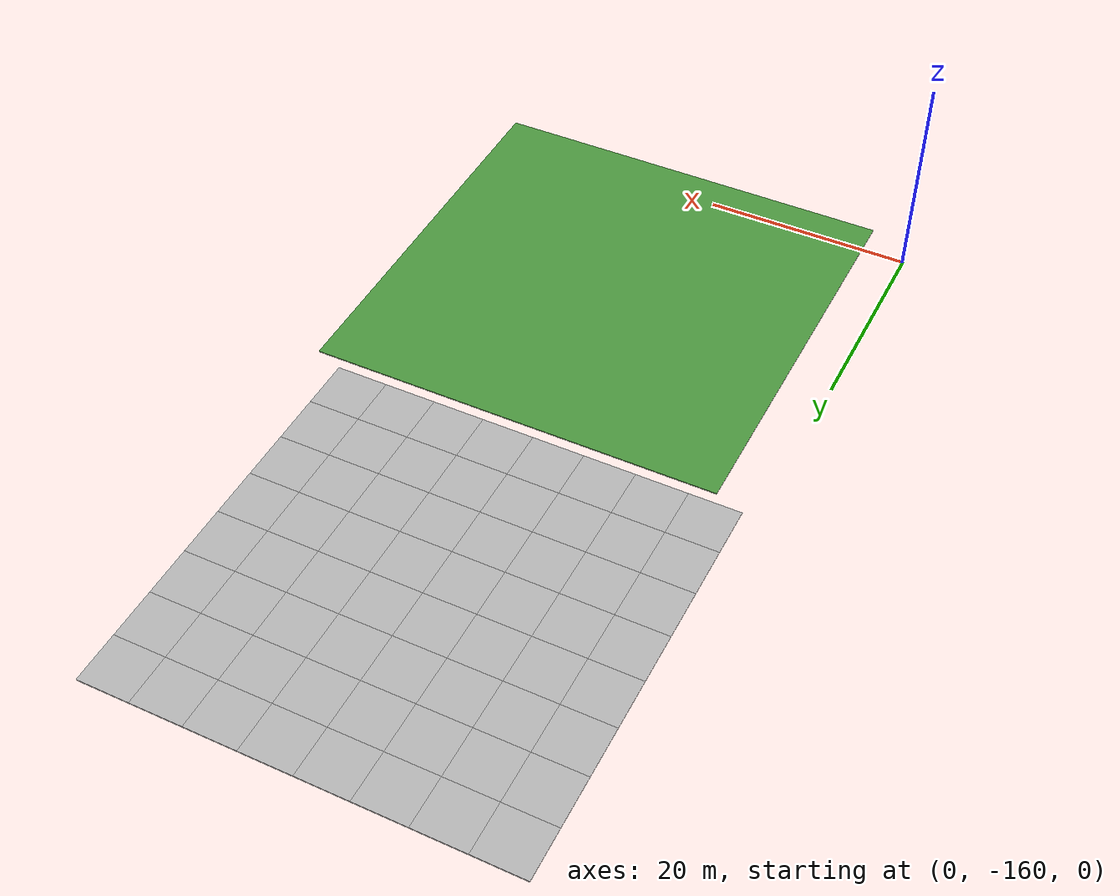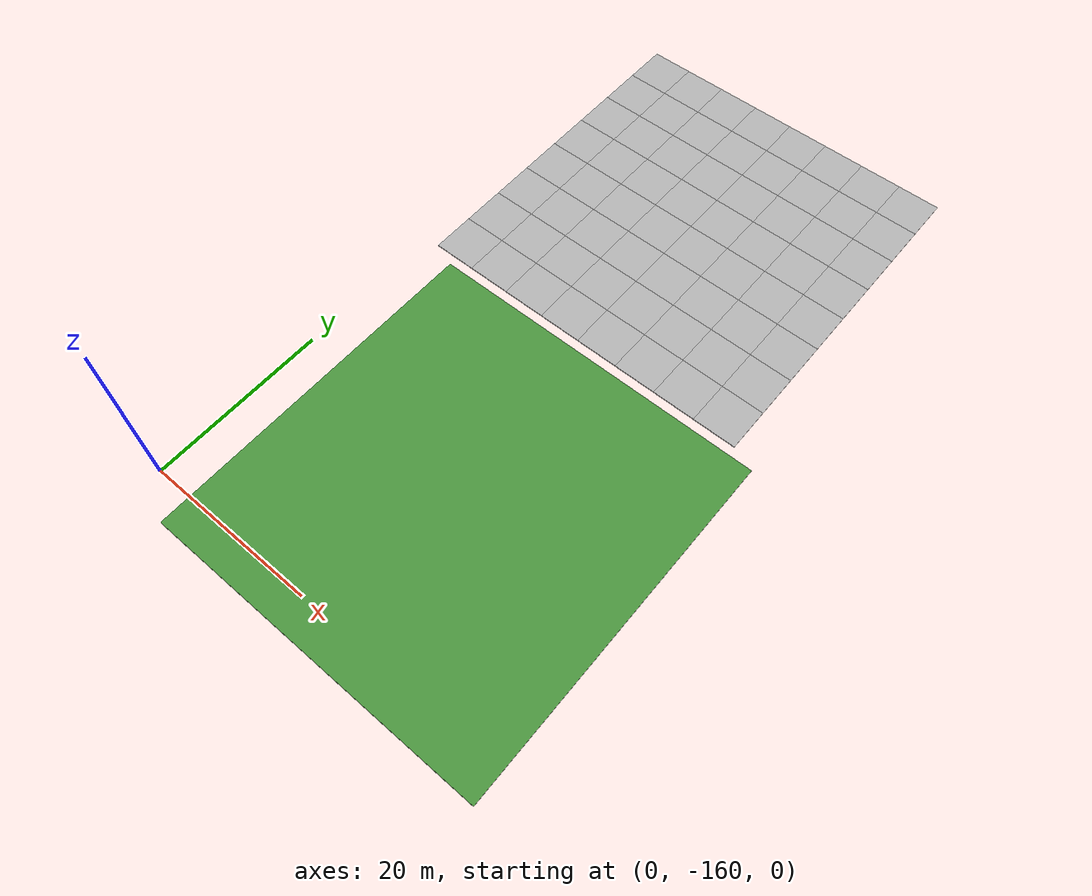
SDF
<sdf version="1.7">
 <world name="default">
  <model name="mud_plane_40x40_5">
   <model name="mud_plane_20x20">
    <model name="mud_plane">
     <static>1</static>
     <link name="link">
      <collision name="collision"><geometry><box><size>10 10 0.1</size></box></geometry></collision>
      <visual name="visual_1">
       <pose>-2.5 2.5 -0.05 0 -0 0</pose>
       <cast_shadows>0</cast_shadows>
       <geometry><box><size>5 5 0.1</size></box></geometry>
       <material>
        <script>
         <uri>model://mud_plane/materials/scripts</uri>
         <uri>model://mud_plane/materials/textures</uri>
         <name>vrc/mud</name>
        </script>
       </material>
      </visual>
      <visual name="visual_2">
       <pose>2.5 2.5 -0.05 0 -0 0</pose>
       <cast_shadows>0</cast_shadows>
       <geometry><box><size>5 5 0.1</size></box></geometry>
       <material>
        <script>
         <uri>model://mud_plane/materials/scripts</uri>
         <uri>model://mud_plane/materials/textures</uri>
         <name>vrc/mud</name>
        </script>
       </material>
      </visual>
      <visual name="visual_3">
       <pose>2.5 -2.5 -0.05 0 -0 0</pose>
       <cast_shadows>0</cast_shadows>
       <geometry><box><size>5 5 0.1</size></box></geometry>
       <material>
        <script>
         <uri>model://mud_plane/materials/scripts</uri>
         <uri>model://mud_plane/materials/textures</uri>
         <name>vrc/mud</name>
        </script>
       </material>
      </visual>
      <visual name="visual_4">
       <pose>-2.5 -2.5 -0.05 0 -0 0</pose>
       <cast_shadows>0</cast_shadows>
       <geometry><box><size>5 5 0.1</size></box></geometry>
       <material>
        <script>
         <uri>model://mud_plane/materials/scripts</uri>
         <uri>model://mud_plane/materials/textures</uri>
         <name>vrc/mud</name>
        </script>
       </material>
      </visual>
     </link>
     <pose>-4.99986 -4.99991 0 0 -0 0</pose>
    </model>
    <model name="mud_plane_0">
     <static>1</static>
     <link name="link">
      <collision name="collision"><geometry><box><size>10 10 0.1</size></box></geometry></collision>
      <visual name="visual_1">
       <pose>-2.5 2.5 -0.05 0 -0 0</pose>
       <cast_shadows>0</cast_shadows>
       <geometry><box><size>5 5 0.1</size></box></geometry>
       <material>
        <script>
         <uri>model://mud_plane/materials/scripts</uri>
         <uri>model://mud_plane/materials/textures</uri>
         <name>vrc/mud</name>
        </script>
       </material>
      </visual>
      <visual name="visual_2">
       <pose>2.5 2.5 -0.05 0 -0 0</pose>
       <cast_shadows>0</cast_shadows>
       <geometry><box><size>5 5 0.1</size></box></geometry>
       <material>
        <script>
         <uri>model://mud_plane/materials/scripts</uri>
         <uri>model://mud_plane/materials/textures</uri>
         <name>vrc/mud</name>
        </script>
       </material>
      </visual>
      <visual name="visual_3">
       <pose>2.5 -2.5 -0.05 0 -0 0</pose>
       <cast_shadows>0</cast_shadows>
       <geometry><box><size>5 5 0.1</size></box></geometry>
       <material>
        <script>
         <uri>model://mud_plane/materials/scripts</uri>
         <uri>model://mud_plane/materials/textures</uri>
         <name>vrc/mud</name>
        </script>
       </material>
      </visual>
      <visual name="visual_4">
       <pose>-2.5 -2.5 -0.05 0 -0 0</pose>
       <cast_shadows>0</cast_shadows>
       <geometry><box><size>5 5 0.1</size></box></geometry>
       <material>
        <script>
         <uri>model://mud_plane/materials/scripts</uri>
         <uri>model://mud_plane/materials/textures</uri>
         <name>vrc/mud</name>
        </script>
       </material>
      </visual>
     </link>
     <pose>-4.99946 4.99954 0 0 -0 0</pose>
    </model>
    <model name="mud_plane_1">
     <static>1</static>
     <link name="link">
      <collision name="collision"><geometry><box><size>10 10 0.1</size></box></geometry></collision>
      <visual name="visual_1">
       <pose>-2.5 2.5 -0.05 0 -0 0</pose>
       <cast_shadows>0</cast_shadows>
       <geometry><box><size>5 5 0.1</size></box></geometry>
       <material>
        <script>
         <uri>model://mud_plane/materials/scripts</uri>
         <uri>model://mud_plane/materials/textures</uri>
         <name>vrc/mud</name>
        </script>
       </material>
      </visual>
      <visual name="visual_2">
       <pose>2.5 2.5 -0.05 0 -0 0</pose>
       <cast_shadows>0</cast_shadows>
       <geometry><box><size>5 5 0.1</size></box></geometry>
       <material>
        <script>
         <uri>model://mud_plane/materials/scripts</uri>
         <uri>model://mud_plane/materials/textures</uri>
         <name>vrc/mud</name>
        </script>
       </material>
      </visual>
      <visual name="visual_3">
       <pose>2.5 -2.5 -0.05 0 -0 0</pose>
       <cast_shadows>0</cast_shadows>
       <geometry><box><size>5 5 0.1</size></box></geometry>
       <material>
        <script>
         <uri>model://mud_plane/materials/scripts</uri>
         <uri>model://mud_plane/materials/textures</uri>
         <name>vrc/mud</name>
        </script>
       </material>
      </visual>
      <visual name="visual_4">
       <pose>-2.5 -2.5 -0.05 0 -0 0</pose>
       <cast_shadows>0</cast_shadows>
       <geometry><box><size>5 5 0.1</size></box></geometry>
       <material>
        <script>
         <uri>model://mud_plane/materials/scripts</uri>
         <uri>model://mud_plane/materials/textures</uri>
         <name>vrc/mud</name>
        </script>
       </material>
      </visual>
     </link>
     <pose>4.99964 -4.99949 0 0 -0 0</pose>
    </model>
    <model name="mud_plane_2">
     <static>1</static>
     <link name="link">
      <collision name="collision"><geometry><box><size>10 10 0.1</size></box></geometry></collision>
      <visual name="visual_1">
       <pose>-2.5 2.5 -0.05 0 -0 0</pose>
       <cast_shadows>0</cast_shadows>
       <geometry><box><size>5 5 0.1</size></box></geometry>
       <material>
        <script>
         <uri>model://mud_plane/materials/scripts</uri>
         <uri>model://mud_plane/materials/textures</uri>
         <name>vrc/mud</name>
        </script>
       </material>
      </visual>
      <visual name="visual_2">
       <pose>2.5 2.5 -0.05 0 -0 0</pose>
       <cast_shadows>0</cast_shadows>
       <geometry><box><size>5 5 0.1</size></box></geometry>
       <material>
        <script>
         <uri>model://mud_plane/materials/scripts</uri>
         <uri>model://mud_plane/materials/textures</uri>
         <name>vrc/mud</name>
        </script>
       </material>
      </visual>
      <visual name="visual_3">
       <pose>2.5 -2.5 -0.05 0 -0 0</pose>
       <cast_shadows>0</cast_shadows>
       <geometry><box><size>5 5 0.1</size></box></geometry>
       <material>
        <script>
         <uri>model://mud_plane/materials/scripts</uri>
         <uri>model://mud_plane/materials/textures</uri>
         <name>vrc/mud</name>
        </script>
       </material>
      </visual>
      <visual name="visual_4">
       <pose>-2.5 -2.5 -0.05 0 -0 0</pose>
       <cast_shadows>0</cast_shadows>
       <geometry><box><size>5 5 0.1</size></box></geometry>
       <material>
        <script>
         <uri>model://mud_plane/materials/scripts</uri>
         <uri>model://mud_plane/materials/textures</uri>
         <name>vrc/mud</name>
        </script>
       </material>
      </visual>
     </link>
     <pose>4.99967 4.99986 0 0 -0 0</pose>
    </model>
    <static>0</static>
    <pose>-9.99895 9.99843 0 0 -0 0</pose>
   </model>
   <model name="mud_plane_20x20_0">
    <model name="mud_plane">
     <static>1</static>
     <link name="link">
      <collision name="collision"><geometry><box><size>10 10 0.1</size></box></geometry></collision>
      <visual name="visual_1">
       <pose>-2.5 2.5 -0.05 0 -0 0</pose>
       <cast_shadows>0</cast_shadows>
       <geometry><box><size>5 5 0.1</size></box></geometry>
       <material>
        <script>
         <uri>model://mud_plane/materials/scripts</uri>
         <uri>model://mud_plane/materials/textures</uri>
         <name>vrc/mud</name>
        </script>
       </material>
      </visual>
      <visual name="visual_2">
       <pose>2.5 2.5 -0.05 0 -0 0</pose>
       <cast_shadows>0</cast_shadows>
       <geometry><box><size>5 5 0.1</size></box></geometry>
       <material>
        <script>
         <uri>model://mud_plane/materials/scripts</uri>
         <uri>model://mud_plane/materials/textures</uri>
         <name>vrc/mud</name>
        </script>
       </material>
      </visual>
      <visual name="visual_3">
       <pose>2.5 -2.5 -0.05 0 -0 0</pose>
       <cast_shadows>0</cast_shadows>
       <geometry><box><size>5 5 0.1</size></box></geometry>
       <material>
        <script>
         <uri>model://mud_plane/materials/scripts</uri>
         <uri>model://mud_plane/materials/textures</uri>
         <name>vrc/mud</name>
        </script>
       </material>
      </visual>
      <visual name="visual_4">
       <pose>-2.5 -2.5 -0.05 0 -0 0</pose>
       <cast_shadows>0</cast_shadows>
       <geometry><box><size>5 5 0.1</size></box></geometry>
       <material>
        <script>
         <uri>model://mud_plane/materials/scripts</uri>
         <uri>model://mud_plane/materials/textures</uri>
         <name>vrc/mud</name>
        </script>
       </material>
      </visual>
     </link>
     <pose>-4.99986 -4.99991 0 0 -0 0</pose>
    </model>
    <model name="mud_plane_0">
     <static>1</static>
     <link name="link">
      <collision name="collision"><geometry><box><size>10 10 0.1</size></box></geometry></collision>
      <visual name="visual_1">
       <pose>-2.5 2.5 -0.05 0 -0 0</pose>
       <cast_shadows>0</cast_shadows>
       <geometry><box><size>5 5 0.1</size></box></geometry>
       <material>
        <script>
         <uri>model://mud_plane/materials/scripts</uri>
         <uri>model://mud_plane/materials/textures</uri>
         <name>vrc/mud</name>
        </script>
       </material>
      </visual>
      <visual name="visual_2">
       <pose>2.5 2.5 -0.05 0 -0 0</pose>
       <cast_shadows>0</cast_shadows>
       <geometry><box><size>5 5 0.1</size></box></geometry>
       <material>
        <script>
         <uri>model://mud_plane/materials/scripts</uri>
         <uri>model://mud_plane/materials/textures</uri>
         <name>vrc/mud</name>
        </script>
       </material>
      </visual>
      <visual name="visual_3">
       <pose>2.5 -2.5 -0.05 0 -0 0</pose>
       <cast_shadows>0</cast_shadows>
       <geometry><box><size>5 5 0.1</size></box></geometry>
       <material>
        <script>
         <uri>model://mud_plane/materials/scripts</uri>
         <uri>model://mud_plane/materials/textures</uri>
         <name>vrc/mud</name>
        </script>
       </material>
      </visual>
      <visual name="visual_4">
       <pose>-2.5 -2.5 -0.05 0 -0 0</pose>
       <cast_shadows>0</cast_shadows>
       <geometry><box><size>5 5 0.1</size></box></geometry>
       <material>
        <script>
         <uri>model://mud_plane/materials/scripts</uri>
         <uri>model://mud_plane/materials/textures</uri>
         <name>vrc/mud</name>
        </script>
       </material>
      </visual>
     </link>
     <pose>-4.99946 4.99954 0 0 -0 0</pose>
    </model>
    <model name="mud_plane_1">
     <static>1</static>
     <link name="link">
      <collision name="collision"><geometry><box><size>10 10 0.1</size></box></geometry></collision>
      <visual name="visual_1">
       <pose>-2.5 2.5 -0.05 0 -0 0</pose>
       <cast_shadows>0</cast_shadows>
       <geometry><box><size>5 5 0.1</size></box></geometry>
       <material>
        <script>
         <uri>model://mud_plane/materials/scripts</uri>
         <uri>model://mud_plane/materials/textures</uri>
         <name>vrc/mud</name>
        </script>
       </material>
      </visual>
      <visual name="visual_2">
       <pose>2.5 2.5 -0.05 0 -0 0</pose>
       <cast_shadows>0</cast_shadows>
       <geometry><box><size>5 5 0.1</size></box></geometry>
       <material>
        <script>
         <uri>model://mud_plane/materials/scripts</uri>
         <uri>model://mud_plane/materials/textures</uri>
         <name>vrc/mud</name>
        </script>
       </material>
      </visual>
      <visual name="visual_3">
       <pose>2.5 -2.5 -0.05 0 -0 0</pose>
       <cast_shadows>0</cast_shadows>
       <geometry><box><size>5 5 0.1</size></box></geometry>
       <material>
        <script>
         <uri>model://mud_plane/materials/scripts</uri>
         <uri>model://mud_plane/materials/textures</uri>
         <name>vrc/mud</name>
        </script>
       </material>
      </visual>
      <visual name="visual_4">
       <pose>-2.5 -2.5 -0.05 0 -0 0</pose>
       <cast_shadows>0</cast_shadows>
       <geometry><box><size>5 5 0.1</size></box></geometry>
       <material>
        <script>
         <uri>model://mud_plane/materials/scripts</uri>
         <uri>model://mud_plane/materials/textures</uri>
         <name>vrc/mud</name>
        </script>
       </material>
      </visual>
     </link>
     <pose>4.99964 -4.99949 0 0 -0 0</pose>
    </model>
    <model name="mud_plane_2">
     <static>1</static>
     <link name="link">
      <collision name="collision"><geometry><box><size>10 10 0.1</size></box></geometry></collision>
      <visual name="visual_1">
       <pose>-2.5 2.5 -0.05 0 -0 0</pose>
       <cast_shadows>0</cast_shadows>
       <geometry><box><size>5 5 0.1</size></box></geometry>
       <material>
        <script>
         <uri>model://mud_plane/materials/scripts</uri>
         <uri>model://mud_plane/materials/textures</uri>
         <name>vrc/mud</name>
        </script>
       </material>
      </visual>
      <visual name="visual_2">
       <pose>2.5 2.5 -0.05 0 -0 0</pose>
       <cast_shadows>0</cast_shadows>
       <geometry><box><size>5 5 0.1</size></box></geometry>
       <material>
        <script>
         <uri>model://mud_plane/materials/scripts</uri>
         <uri>model://mud_plane/materials/textures</uri>
         <name>vrc/mud</name>
        </script>
       </material>
      </visual>
      <visual name="visual_3">
       <pose>2.5 -2.5 -0.05 0 -0 0</pose>
       <cast_shadows>0</cast_shadows>
       <geometry><box><size>5 5 0.1</size></box></geometry>
       <material>
        <script>
         <uri>model://mud_plane/materials/scripts</uri>
         <uri>model://mud_plane/materials/textures</uri>
         <name>vrc/mud</name>
        </script>
       </material>
      </visual>
      <visual name="visual_4">
       <pose>-2.5 -2.5 -0.05 0 -0 0</pose>
       <cast_shadows>0</cast_shadows>
       <geometry><box><size>5 5 0.1</size></box></geometry>
       <material>
        <script>
         <uri>model://mud_plane/materials/scripts</uri>
         <uri>model://mud_plane/materials/textures</uri>
         <name>vrc/mud</name>
        </script>
       </material>
      </visual>
     </link>
     <pose>4.99967 4.99986 0 0 -0 0</pose>
    </model>
    <static>0</static>
    <pose>9.99933 9.9997 0 0 -0 0</pose>
   </model>
   <model name="mud_plane_20x20_1">
    <model name="mud_plane">
     <static>1</static>
     <link name="link">
      <collision name="collision"><geometry><box><size>10 10 0.1</size></box></geometry></collision>
      <visual name="visual_1">
       <pose>-2.5 2.5 -0.05 0 -0 0</pose>
       <cast_shadows>0</cast_shadows>
       <geometry><box><size>5 5 0.1</size></box></geometry>
       <material>
        <script>
         <uri>model://mud_plane/materials/scripts</uri>
         <uri>model://mud_plane/materials/textures</uri>
         <name>vrc/mud</name>
        </script>
       </material>
      </visual>
      <visual name="visual_2">
       <pose>2.5 2.5 -0.05 0 -0 0</pose>
       <cast_shadows>0</cast_shadows>
       <geometry><box><size>5 5 0.1</size></box></geometry>
       <material>
        <script>
         <uri>model://mud_plane/materials/scripts</uri>
         <uri>model://mud_plane/materials/textures</uri>
         <name>vrc/mud</name>
        </script>
       </material>
      </visual>
      <visual name="visual_3">
       <pose>2.5 -2.5 -0.05 0 -0 0</pose>
       <cast_shadows>0</cast_shadows>
       <geometry><box><size>5 5 0.1</size></box></geometry>
       <material>
        <script>
         <uri>model://mud_plane/materials/scripts</uri>
         <uri>model://mud_plane/materials/textures</uri>
         <name>vrc/mud</name>
        </script>
       </material>
      </visual>
      <visual name="visual_4">
       <pose>-2.5 -2.5 -0.05 0 -0 0</pose>
       <cast_shadows>0</cast_shadows>
       <geometry><box><size>5 5 0.1</size></box></geometry>
       <material>
        <script>
         <uri>model://mud_plane/materials/scripts</uri>
         <uri>model://mud_plane/materials/textures</uri>
         <name>vrc/mud</name>
        </script>
       </material>
      </visual>
     </link>
     <pose>-4.99986 -4.99991 0 0 -0 0</pose>
    </model>
    <model name="mud_plane_0">
     <static>1</static>
     <link name="link">
      <collision name="collision"><geometry><box><size>10 10 0.1</size></box></geometry></collision>
      <visual name="visual_1">
       <pose>-2.5 2.5 -0.05 0 -0 0</pose>
       <cast_shadows>0</cast_shadows>
       <geometry><box><size>5 5 0.1</size></box></geometry>
       <material>
        <script>
         <uri>model://mud_plane/materials/scripts</uri>
         <uri>model://mud_plane/materials/textures</uri>
         <name>vrc/mud</name>
        </script>
       </material>
      </visual>
      <visual name="visual_2">
       <pose>2.5 2.5 -0.05 0 -0 0</pose>
       <cast_shadows>0</cast_shadows>
       <geometry><box><size>5 5 0.1</size></box></geometry>
       <material>
        <script>
         <uri>model://mud_plane/materials/scripts</uri>
         <uri>model://mud_plane/materials/textures</uri>
         <name>vrc/mud</name>
        </script>
       </material>
      </visual>
      <visual name="visual_3">
       <pose>2.5 -2.5 -0.05 0 -0 0</pose>
       <cast_shadows>0</cast_shadows>
       <geometry><box><size>5 5 0.1</size></box></geometry>
       <material>
        <script>
         <uri>model://mud_plane/materials/scripts</uri>
         <uri>model://mud_plane/materials/textures</uri>
         <name>vrc/mud</name>
        </script>
       </material>
      </visual>
      <visual name="visual_4">
       <pose>-2.5 -2.5 -0.05 0 -0 0</pose>
       <cast_shadows>0</cast_shadows>
       <geometry><box><size>5 5 0.1</size></box></geometry>
       <material>
        <script>
         <uri>model://mud_plane/materials/scripts</uri>
         <uri>model://mud_plane/materials/textures</uri>
         <name>vrc/mud</name>
        </script>
       </material>
      </visual>
     </link>
     <pose>-4.99946 4.99954 0 0 -0 0</pose>
    </model>
    <model name="mud_plane_1">
     <static>1</static>
     <link name="link">
      <collision name="collision"><geometry><box><size>10 10 0.1</size></box></geometry></collision>
      <visual name="visual_1">
       <pose>-2.5 2.5 -0.05 0 -0 0</pose>
       <cast_shadows>0</cast_shadows>
       <geometry><box><size>5 5 0.1</size></box></geometry>
       <material>
        <script>
         <uri>model://mud_plane/materials/scripts</uri>
         <uri>model://mud_plane/materials/textures</uri>
         <name>vrc/mud</name>
        </script>
       </material>
      </visual>
      <visual name="visual_2">
       <pose>2.5 2.5 -0.05 0 -0 0</pose>
       <cast_shadows>0</cast_shadows>
       <geometry><box><size>5 5 0.1</size></box></geometry>
       <material>
        <script>
         <uri>model://mud_plane/materials/scripts</uri>
         <uri>model://mud_plane/materials/textures</uri>
         <name>vrc/mud</name>
        </script>
       </material>
      </visual>
      <visual name="visual_3">
       <pose>2.5 -2.5 -0.05 0 -0 0</pose>
       <cast_shadows>0</cast_shadows>
       <geometry><box><size>5 5 0.1</size></box></geometry>
       <material>
        <script>
         <uri>model://mud_plane/materials/scripts</uri>
         <uri>model://mud_plane/materials/textures</uri>
         <name>vrc/mud</name>
        </script>
       </material>
      </visual>
      <visual name="visual_4">
       <pose>-2.5 -2.5 -0.05 0 -0 0</pose>
       <cast_shadows>0</cast_shadows>
       <geometry><box><size>5 5 0.1</size></box></geometry>
       <material>
        <script>
         <uri>model://mud_plane/materials/scripts</uri>
         <uri>model://mud_plane/materials/textures</uri>
         <name>vrc/mud</name>
        </script>
       </material>
      </visual>
     </link>
     <pose>4.99964 -4.99949 0 0 -0 0</pose>
    </model>
    <model name="mud_plane_2">
     <static>1</static>
     <link name="link">
      <collision name="collision"><geometry><box><size>10 10 0.1</size></box></geometry></collision>
      <visual name="visual_1">
       <pose>-2.5 2.5 -0.05 0 -0 0</pose>
       <cast_shadows>0</cast_shadows>
       <geometry><box><size>5 5 0.1</size></box></geometry>
       <material>
        <script>
         <uri>model://mud_plane/materials/scripts</uri>
         <uri>model://mud_plane/materials/textures</uri>
         <name>vrc/mud</name>
        </script>
       </material>
      </visual>
      <visual name="visual_2">
       <pose>2.5 2.5 -0.05 0 -0 0</pose>
       <cast_shadows>0</cast_shadows>
       <geometry><box><size>5 5 0.1</size></box></geometry>
       <material>
        <script>
         <uri>model://mud_plane/materials/scripts</uri>
         <uri>model://mud_plane/materials/textures</uri>
         <name>vrc/mud</name>
        </script>
       </material>
      </visual>
      <visual name="visual_3">
       <pose>2.5 -2.5 -0.05 0 -0 0</pose>
       <cast_shadows>0</cast_shadows>
       <geometry><box><size>5 5 0.1</size></box></geometry>
       <material>
        <script>
         <uri>model://mud_plane/materials/scripts</uri>
         <uri>model://mud_plane/materials/textures</uri>
         <name>vrc/mud</name>
        </script>
       </material>
      </visual>
      <visual name="visual_4">
       <pose>-2.5 -2.5 -0.05 0 -0 0</pose>
       <cast_shadows>0</cast_shadows>
       <geometry><box><size>5 5 0.1</size></box></geometry>
       <material>
        <script>
         <uri>model://mud_plane/materials/scripts</uri>
         <uri>model://mud_plane/materials/textures</uri>
         <name>vrc/mud</name>
        </script>
       </material>
      </visual>
     </link>
     <pose>4.99967 4.99986 0 0 -0 0</pose>
    </model>
    <static>0</static>
    <pose>9.9993 -9.99877 0 0 -0 0</pose>
   </model>
   <model name="mud_plane_20x20_2">
    <model name="mud_plane">
     <static>1</static>
     <link name="link">
      <collision name="collision"><geometry><box><size>10 10 0.1</size></box></geometry></collision>
      <visual name="visual_1">
       <pose>-2.5 2.5 -0.05 0 -0 0</pose>
       <cast_shadows>0</cast_shadows>
       <geometry><box><size>5 5 0.1</size></box></geometry>
       <material>
        <script>
         <uri>model://mud_plane/materials/scripts</uri>
         <uri>model://mud_plane/materials/textures</uri>
         <name>vrc/mud</name>
        </script>
       </material>
      </visual>
      <visual name="visual_2">
       <pose>2.5 2.5 -0.05 0 -0 0</pose>
       <cast_shadows>0</cast_shadows>
       <geometry><box><size>5 5 0.1</size></box></geometry>
       <material>
        <script>
         <uri>model://mud_plane/materials/scripts</uri>
         <uri>model://mud_plane/materials/textures</uri>
         <name>vrc/mud</name>
        </script>
       </material>
      </visual>
      <visual name="visual_3">
       <pose>2.5 -2.5 -0.05 0 -0 0</pose>
       <cast_shadows>0</cast_shadows>
       <geometry><box><size>5 5 0.1</size></box></geometry>
       <material>
        <script>
         <uri>model://mud_plane/materials/scripts</uri>
         <uri>model://mud_plane/materials/textures</uri>
         <name>vrc/mud</name>
        </script>
       </material>
      </visual>
      <visual name="visual_4">
       <pose>-2.5 -2.5 -0.05 0 -0 0</pose>
       <cast_shadows>0</cast_shadows>
       <geometry><box><size>5 5 0.1</size></box></geometry>
       <material>
        <script>
         <uri>model://mud_plane/materials/scripts</uri>
         <uri>model://mud_plane/materials/textures</uri>
         <name>vrc/mud</name>
        </script>
       </material>
      </visual>
     </link>
     <pose>-4.99986 -4.99991 0 0 -0 0</pose>
    </model>
    <model name="mud_plane_0">
     <static>1</static>
     <link name="link">
      <collision name="collision"><geometry><box><size>10 10 0.1</size></box></geometry></collision>
      <visual name="visual_1">
       <pose>-2.5 2.5 -0.05 0 -0 0</pose>
       <cast_shadows>0</cast_shadows>
       <geometry><box><size>5 5 0.1</size></box></geometry>
       <material>
        <script>
         <uri>model://mud_plane/materials/scripts</uri>
         <uri>model://mud_plane/materials/textures</uri>
         <name>vrc/mud</name>
        </script>
       </material>
      </visual>
      <visual name="visual_2">
       <pose>2.5 2.5 -0.05 0 -0 0</pose>
       <cast_shadows>0</cast_shadows>
       <geometry><box><size>5 5 0.1</size></box></geometry>
       <material>
        <script>
         <uri>model://mud_plane/materials/scripts</uri>
         <uri>model://mud_plane/materials/textures</uri>
         <name>vrc/mud</name>
        </script>
       </material>
      </visual>
      <visual name="visual_3">
       <pose>2.5 -2.5 -0.05 0 -0 0</pose>
       <cast_shadows>0</cast_shadows>
       <geometry><box><size>5 5 0.1</size></box></geometry>
       <material>
        <script>
         <uri>model://mud_plane/materials/scripts</uri>
         <uri>model://mud_plane/materials/textures</uri>
         <name>vrc/mud</name>
        </script>
       </material>
      </visual>
      <visual name="visual_4">
       <pose>-2.5 -2.5 -0.05 0 -0 0</pose>
       <cast_shadows>0</cast_shadows>
       <geometry><box><size>5 5 0.1</size></box></geometry>
       <material>
        <script>
         <uri>model://mud_plane/materials/scripts</uri>
         <uri>model://mud_plane/materials/textures</uri>
         <name>vrc/mud</name>
        </script>
       </material>
      </visual>
     </link>
     <pose>-4.99946 4.99954 0 0 -0 0</pose>
    </model>
    <model name="mud_plane_1">
     <static>1</static>
     <link name="link">
      <collision name="collision"><geometry><box><size>10 10 0.1</size></box></geometry></collision>
      <visual name="visual_1">
       <pose>-2.5 2.5 -0.05 0 -0 0</pose>
       <cast_shadows>0</cast_shadows>
       <geometry><box><size>5 5 0.1</size></box></geometry>
       <material>
        <script>
         <uri>model://mud_plane/materials/scripts</uri>
         <uri>model://mud_plane/materials/textures</uri>
         <name>vrc/mud</name>
        </script>
       </material>
      </visual>
      <visual name="visual_2">
       <pose>2.5 2.5 -0.05 0 -0 0</pose>
       <cast_shadows>0</cast_shadows>
       <geometry><box><size>5 5 0.1</size></box></geometry>
       <material>
        <script>
         <uri>model://mud_plane/materials/scripts</uri>
         <uri>model://mud_plane/materials/textures</uri>
         <name>vrc/mud</name>
        </script>
       </material>
      </visual>
      <visual name="visual_3">
       <pose>2.5 -2.5 -0.05 0 -0 0</pose>
       <cast_shadows>0</cast_shadows>
       <geometry><box><size>5 5 0.1</size></box></geometry>
       <material>
        <script>
         <uri>model://mud_plane/materials/scripts</uri>
         <uri>model://mud_plane/materials/textures</uri>
         <name>vrc/mud</name>
        </script>
       </material>
      </visual>
      <visual name="visual_4">
       <pose>-2.5 -2.5 -0.05 0 -0 0</pose>
       <cast_shadows>0</cast_shadows>
       <geometry><box><size>5 5 0.1</size></box></geometry>
       <material>
        <script>
         <uri>model://mud_plane/materials/scripts</uri>
         <uri>model://mud_plane/materials/textures</uri>
         <name>vrc/mud</name>
        </script>
       </material>
      </visual>
     </link>
     <pose>4.99964 -4.99949 0 0 -0 0</pose>
    </model>
    <model name="mud_plane_2">
     <static>1</static>
     <link name="link">
      <collision name="collision"><geometry><box><size>10 10 0.1</size></box></geometry></collision>
      <visual name="visual_1">
       <pose>-2.5 2.5 -0.05 0 -0 0</pose>
       <cast_shadows>0</cast_shadows>
       <geometry><box><size>5 5 0.1</size></box></geometry>
       <material>
        <script>
         <uri>model://mud_plane/materials/scripts</uri>
         <uri>model://mud_plane/materials/textures</uri>
         <name>vrc/mud</name>
        </script>
       </material>
      </visual>
      <visual name="visual_2">
       <pose>2.5 2.5 -0.05 0 -0 0</pose>
       <cast_shadows>0</cast_shadows>
       <geometry><box><size>5 5 0.1</size></box></geometry>
       <material>
        <script>
         <uri>model://mud_plane/materials/scripts</uri>
         <uri>model://mud_plane/materials/textures</uri>
         <name>vrc/mud</name>
        </script>
       </material>
      </visual>
      <visual name="visual_3">
       <pose>2.5 -2.5 -0.05 0 -0 0</pose>
       <cast_shadows>0</cast_shadows>
       <geometry><box><size>5 5 0.1</size></box></geometry>
       <material>
        <script>
         <uri>model://mud_plane/materials/scripts</uri>
         <uri>model://mud_plane/materials/textures</uri>
         <name>vrc/mud</name>
        </script>
       </material>
      </visual>
      <visual name="visual_4">
       <pose>-2.5 -2.5 -0.05 0 -0 0</pose>
       <cast_shadows>0</cast_shadows>
       <geometry><box><size>5 5 0.1</size></box></geometry>
       <material>
        <script>
         <uri>model://mud_plane/materials/scripts</uri>
         <uri>model://mud_plane/materials/textures</uri>
         <name>vrc/mud</name>
        </script>
       </material>
      </visual>
     </link>
     <pose>4.99967 4.99986 0 0 -0 0</pose>
    </model>
    <static>0</static>
    <pose>-9.99969 -9.99935 0 0 -0 0</pose>
   </model>
   <static>0</static>
   <pose>21.4671 -102.424 0 0 -0 0</pose>
  </model>
  <model name="grass_plane_40x40_1">
   <pose>24.2794 -143.496 -0.05 0 -0 0</pose>
   <static>1</static>
   <link name="link">
    <collision name="collision"><geometry><box><size>40 40 0.1</size></box></geometry></collision>
    <visual name="grass">
     <cast_shadows>0</cast_shadows>
     <geometry><box><size>40 40 0.1</size></box></geometry>
     <material>
      <script><uri>file://media/materials/scripts/gazebo.material</uri><name>Gazebo/Grass</name></script>
     </material>
    </visual>
   </link>
  </model>
 </world>
</sdf>
